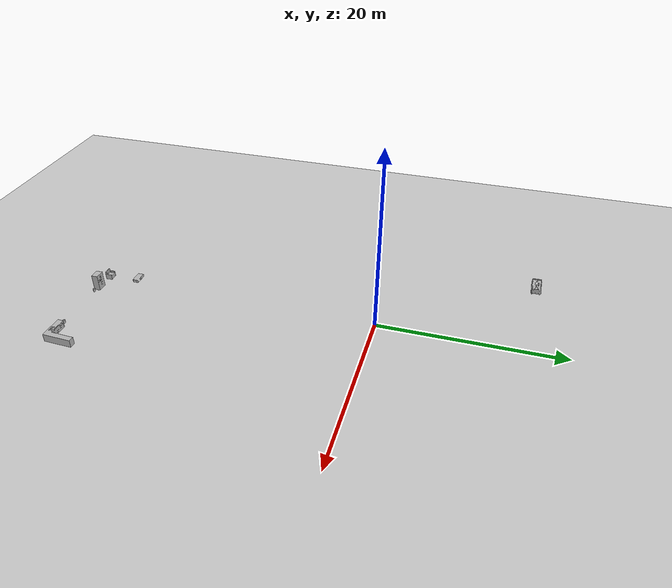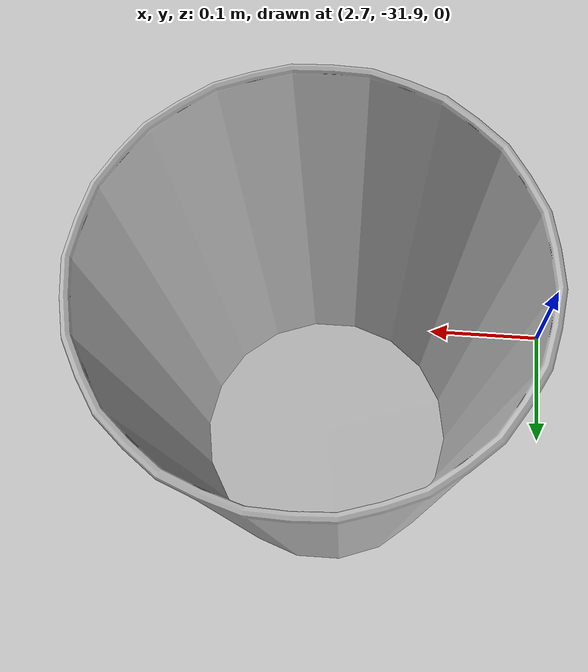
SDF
<sdf version="1.6">
 <world name="default">
  <light name="sun" type="directional">
   <pose>0 0 10 0 -0 0</pose>
   <diffuse>0.8 0.8 0.8 1</diffuse>
   <specular>0.2 0.2 0.2 1</specular>
   <attenuation>
    <range>1000</range>
    <constant>0.9</constant>
    <linear>0.01</linear>
    <quadratic>0.001</quadratic>
   </attenuation>
   <direction>-0.5 0.1 -0.9</direction>
  </light>
  <model name="ground_plane">
   <static>1</static>
   <link name="link">
    <collision name="collision">
     <geometry><plane><normal>0 0 1</normal><size>100 100</size></plane></geometry>
     <surface><friction><ode><mu>100</mu><mu2>50</mu2></ode></friction></surface>
    </collision>
    <visual name="visual">
     <cast_shadows>0</cast_shadows>
     <geometry><plane><normal>0 0 1</normal><size>100 100</size></plane></geometry>
     <material>
      <script><uri>file://media/materials/scripts/gazebo.material</uri><name>Gazebo/Grey</name></script>
     </material>
    </visual>
   </link>
  </model>
  <gravity>0 0 -9.8</gravity>
  <magnetic_field>6e-06 2.3e-05 -4.2e-05</magnetic_field>
  <atmosphere type="adiabatic"/>
  <physics name="default_physics" default="0" type="ode">
   <max_step_size>0.001</max_step_size>
   <real_time_factor>1</real_time_factor>
   <real_time_update_rate>1000</real_time_update_rate>
  </physics>
  <scene><ambient>0.4 0.4 0.4 1</ambient><background>0.7 0.7 0.7 1</background><shadows>1</shadows></scene>
  <audio><device>default</device></audio>
  <spherical_coordinates>
   <surface_model>EARTH_WGS84</surface_model>
   <latitude_deg>0</latitude_deg>
   <longitude_deg>0</longitude_deg>
   <elevation>0</elevation>
   <heading_deg>0</heading_deg>
  </spherical_coordinates>
  <model name="ElderLadyPatient">
   <link name="body">
    <visual name="visual">
     <geometry><mesh><uri>model://ElderLadyPatient/meshes/ElderFemale.obj</uri></mesh></geometry>
    </visual>
    <collision name="collision">
     <geometry><mesh><uri>model://ElderLadyPatient/meshes/ElderFemale.obj</uri></mesh></geometry>
    </collision>
    <inertial>
     <inertia><ixx>1</ixx><ixy>0</ixy><ixz>0</ixz><iyy>1</iyy><iyz>0</iyz><izz>1</izz></inertia>
     <mass>1</mass>
    </inertial>
   </link>
   <pose>-11.2266 16.1703 0.001667 1e-06 1e-06 0</pose>
  </model>
  <model name="aws_robomaker_residential_SofaB_01">
   <link name="link">
    <inertial>
     <mass>72.5</mass>
     <inertia><ixx>1</ixx><ixy>0</ixy><ixz>0</ixz><iyy>1</iyy><iyz>0</iyz><izz>1</izz></inertia>
    </inertial>
    <collision name="collision">
     <geometry>
      <mesh>
       <uri>model://aws_robomaker_residential_SofaB_01/meshes/aws_SofaB_01_collision.DAE</uri>
       <scale>1 1 1</scale>
      </mesh>
     </geometry>
    </collision>
    <visual name="visual">
     <geometry>
      <mesh><uri>model://aws_robomaker_residential_SofaB_01/meshes/aws_SofaB_01_visual.DAE</uri></mesh>
     </geometry>
     <meta><layer>1</layer></meta>
    </visual>
   </link>
   <pose>-0.17806 -31.4742 0 0 -0 1.60263</pose>
  </model>
  <model name="aws_robomaker_residential_Refrigerator_01">
   <link name="link">
    <inertial><mass>1</mass></inertial>
    <collision name="collision">
     <geometry>
      <mesh>
       <uri>model://aws_robomaker_residential_Refrigerator_01/meshes/aws_Refrigerator_01_collision.DAE</uri>
       <scale>1 1 1</scale>
      </mesh>
     </geometry>
    </collision>
    <visual name="visual">
     <geometry>
      <mesh>
       <uri>model://aws_robomaker_residential_Refrigerator_01/meshes/aws_Refrigerator_01_visual.DAE</uri>
      </mesh>
     </geometry>
     <meta><layer>1</layer></meta>
    </visual>
   </link>
   <static>1</static>
   <pose>2.08645 -31.5163 0 0 -0 3.12968</pose>
  </model>
  <model name="aws_robomaker_residential_CoffeeTable_01">
   <link name="link">
    <inertial>
     <mass>21.7</mass>
     <inertia><ixx>0.81375</ixx><ixy>0</ixy><ixz>0</ixz><iyy>2.76675</iyy><iyz>0</iyz><izz>3.254</izz></inertia>
    </inertial>
    <collision name="collision">
     <geometry>
      <mesh>
       <uri>model://aws_robomaker_residential_CoffeeTable_01/meshes/aws_CoffeeTable_01_collision.DAE</uri>
       <scale>1 1 1</scale>
      </mesh>
     </geometry>
     <surface><contact><ode><max_vel>0.01</max_vel></ode></contact></surface>
    </collision>
    <visual name="visual">
     <geometry>
      <mesh><uri>model://aws_robomaker_residential_CoffeeTable_01/meshes/aws_CoffeeTable_01_visual.DAE</uri></mesh>
     </geometry>
     <meta><layer>1</layer></meta>
    </visual>
   </link>
   <static>1</static>
   <pose>-0.701784 -28.2079 0 0 -0 0</pose>
  </model>
  <model name="aws_robomaker_residential_KitchenCabinet_01">
   <link name="link">
    <inertial><mass>1</mass></inertial>
    <collision name="collision">
     <geometry>
      <mesh>
       <uri>model://aws_robomaker_residential_KitchenCabinet_01/meshes/aws_KitchenCabinet_01_collision.DAE</uri>
       <scale>1 1 1</scale>
      </mesh>
     </geometry>
    </collision>
    <visual name="visual">
     <geometry>
      <mesh>
       <uri>model://aws_robomaker_residential_KitchenCabinet_01/meshes/aws_KitchenCabinet_01_visual.DAE</uri>
      </mesh>
     </geometry>
     <meta><layer>1</layer></meta>
    </visual>
   </link>
   <static>1</static>
   <pose>10.7662 -30.3584 0 0 -0 3.10058</pose>
  </model>
  <model name="aws_robomaker_residential_Trash_01">
   <link name="link">
    <inertial>
     <mass>0.1</mass>
     <inertia><ixy>0</ixy><ixz>0</ixz><iyz>0</iyz><ixx>0.05288</ixx><iyy>0.05288</iyy><izz>0.09132</izz></inertia>
    </inertial>
    <collision name="collision">
     <geometry>
      <mesh>
       <uri>model://aws_robomaker_residential_Trash_01/meshes/aws_Trash_01_collision.DAE</uri>
       <scale>1 1 1</scale>
      </mesh>
     </geometry>
    </collision>
    <visual name="visual">
     <geometry>
      <mesh><uri>model://aws_robomaker_residential_Trash_01/meshes/aws_Trash_01_visual.DAE</uri></mesh>
     </geometry>
     <meta><layer>1</layer></meta>
    </visual>
   </link>
   <pose>8.79543 -31.7695 0 0 -0 0</pose>
  </model>
  <model name="aws_robomaker_residential_Trash_01_0">
   <link name="link">
    <inertial>
     <mass>0.1</mass>
     <inertia><ixy>0</ixy><ixz>0</ixz><iyz>0</iyz><ixx>0.05288</ixx><iyy>0.05288</iyy><izz>0.09132</izz></inertia>
    </inertial>
    <collision name="collision">
     <geometry>
      <mesh>
       <uri>model://aws_robomaker_residential_Trash_01/meshes/aws_Trash_01_collision.DAE</uri>
       <scale>1 1 1</scale>
      </mesh>
     </geometry>
    </collision>
    <visual name="visual">
     <geometry>
      <mesh><uri>model://aws_robomaker_residential_Trash_01/meshes/aws_Trash_01_visual.DAE</uri></mesh>
     </geometry>
     <meta><layer>1</layer></meta>
    </visual>
   </link>
   <pose>2.88775 -31.7849 0 0 -0 0</pose>
  </model>
 </world>
</sdf>
